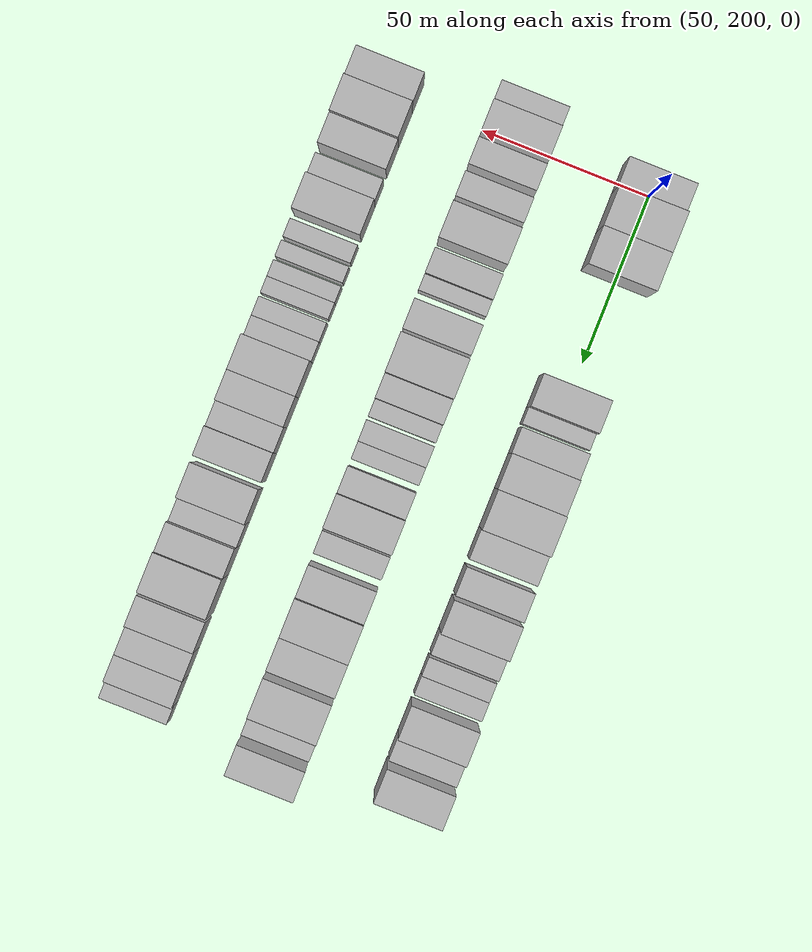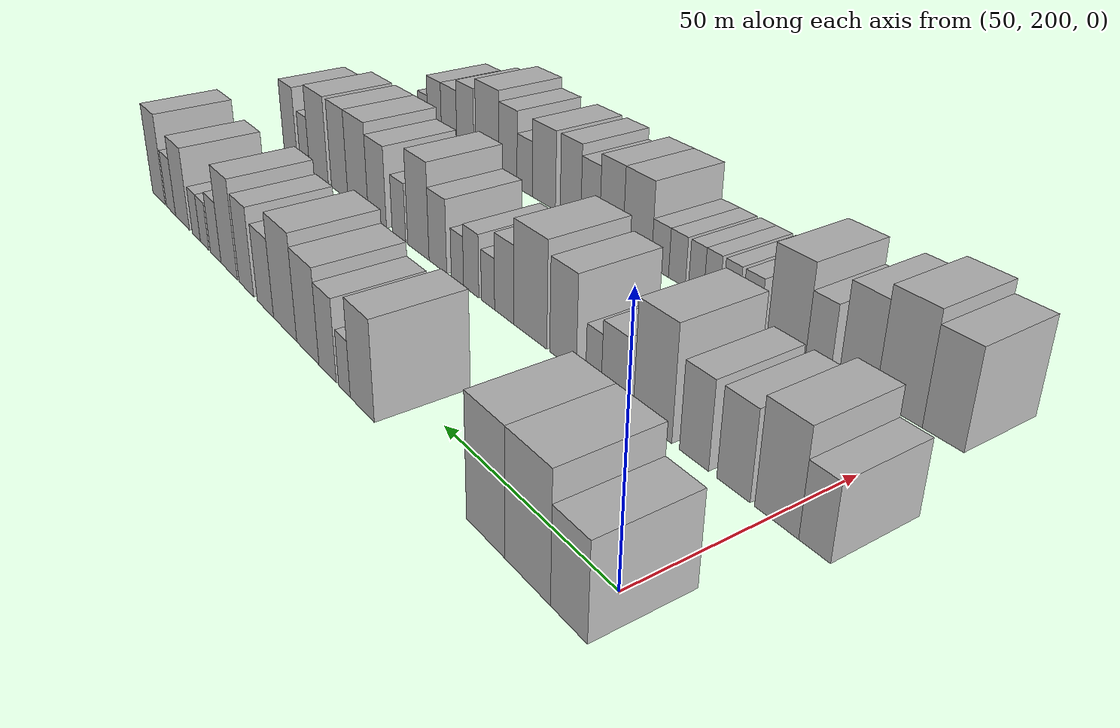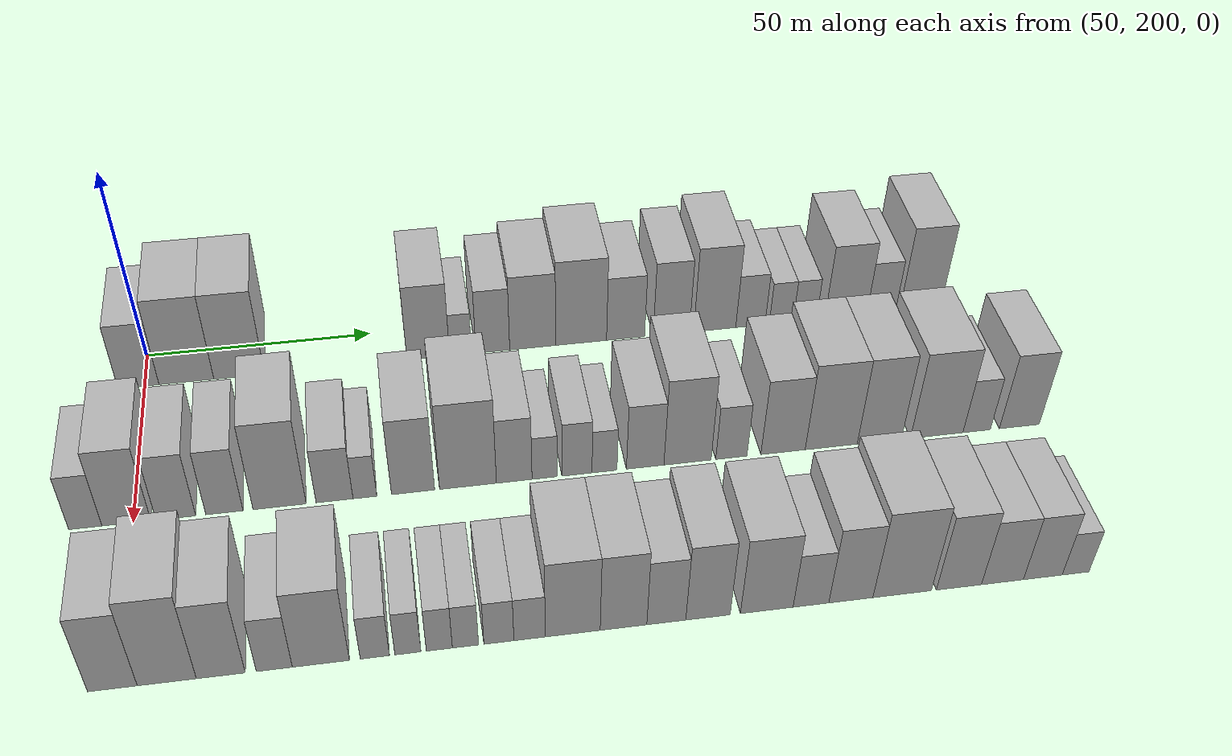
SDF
<sdf version="1.6">
 <world name="default">
  <model name="building_70">
   <static>1</static>
   <pose>50.0000 198.7415 0 0.000000 0.000000 0.000000</pose>
   <link name="link">
    <pose>0 0 9.00 0 0 0</pose>
    <collision name="collision"><geometry><box><size>20.0000 8.8567 18.0000</size></box></geometry></collision>
    <visual name="visual">
     <cast_shadows>0</cast_shadows>
     <geometry><box><size>20.0000 8.8567 18.0000</size></box></geometry>
     <material>
      <script>
       <uri>model://HANNAS_wall/materials/scripts</uri>
       <uri>model://HANNAS_wall/materials/textures</uri>
       <name>vrc/HANNAS_wall</name>
      </script>
     </material>
    </visual>
   </link>
  </model>
  <model name="building_71">
   <static>1</static>
   <pose>50.0000 209.1260 0 0.000000 0.000000 0.000000</pose>
   <link name="link">
    <pose>0 0 12.00 0 0 0</pose>
    <collision name="collision"><geometry><box><size>20.0000 11.9123 24.0000</size></box></geometry></collision>
    <visual name="visual">
     <cast_shadows>0</cast_shadows>
     <geometry><box><size>20.0000 11.9123 24.0000</size></box></geometry>
     <material>
      <script>
       <uri>model://HANNAS_wall/materials/scripts</uri>
       <uri>model://HANNAS_wall/materials/textures</uri>
       <name>vrc/HANNAS_wall</name>
      </script>
     </material>
    </visual>
   </link>
  </model>
  <model name="building_72">
   <static>1</static>
   <pose>50.0000 220.6536 0 0.000000 0.000000 0.000000</pose>
   <link name="link">
    <pose>0 0 12.00 0 0 0</pose>
    <collision name="collision"><geometry><box><size>20.0000 11.1428 24.0000</size></box></geometry></collision>
    <visual name="visual">
     <cast_shadows>0</cast_shadows>
     <geometry><box><size>20.0000 11.1428 24.0000</size></box></geometry>
     <material>
      <script>
       <uri>model://HANNAS_wall/materials/scripts</uri>
       <uri>model://HANNAS_wall/materials/textures</uri>
       <name>vrc/HANNAS_wall</name>
      </script>
     </material>
    </visual>
   </link>
  </model>
  <model name="building_73">
   <static>1</static>
   <pose>50.0000 262.5950 0 0.000000 0.000000 0.000000</pose>
   <link name="link">
    <pose>0 0 10.50 0 0 0</pose>
    <collision name="collision"><geometry><box><size>20.0000 9.5800 21.0000</size></box></geometry></collision>
    <visual name="visual">
     <cast_shadows>0</cast_shadows>
     <geometry><box><size>20.0000 9.5800 21.0000</size></box></geometry>
     <material>
      <script>
       <uri>model://HANNAS_wall/materials/scripts</uri>
       <uri>model://HANNAS_wall/materials/textures</uri>
       <name>vrc/HANNAS_wall</name>
      </script>
     </material>
    </visual>
   </link>
  </model>
  <model name="building_74">
   <static>1</static>
   <pose>50.0000 269.8548 0 0.000000 0.000000 0.000000</pose>
   <link name="link">
    <pose>0 0 6.00 0 0 0</pose>
    <collision name="collision"><geometry><box><size>20.0000 4.9397 12.0000</size></box></geometry></collision>
    <visual name="visual">
     <cast_shadows>0</cast_shadows>
     <geometry><box><size>20.0000 4.9397 12.0000</size></box></geometry>
     <material>
      <script>
       <uri>model://HANNAS_wall/materials/scripts</uri>
       <uri>model://HANNAS_wall/materials/textures</uri>
       <name>vrc/HANNAS_wall</name>
      </script>
     </material>
    </visual>
   </link>
  </model>
  <model name="building_75">
   <static>1</static>
   <pose>50.0000 277.1566 0 0.000000 0.000000 0.000000</pose>
   <link name="link">
    <pose>0 0 9.00 0 0 0</pose>
    <collision name="collision"><geometry><box><size>20.0000 7.6638 18.0000</size></box></geometry></collision>
    <visual name="visual">
     <cast_shadows>0</cast_shadows>
     <geometry><box><size>20.0000 7.6638 18.0000</size></box></geometry>
     <material>
      <script>
       <uri>model://HANNAS_wall/materials/scripts</uri>
       <uri>model://HANNAS_wall/materials/textures</uri>
       <name>vrc/HANNAS_wall</name>
      </script>
     </material>
    </visual>
   </link>
  </model>
  <model name="building_76">
   <static>1</static>
   <pose>50.0000 286.2230 0 0.000000 0.000000 0.000000</pose>
   <link name="link">
    <pose>0 0 10.50 0 0 0</pose>
    <collision name="collision"><geometry><box><size>20.0000 10.4691 21.0000</size></box></geometry></collision>
    <visual name="visual">
     <cast_shadows>0</cast_shadows>
     <geometry><box><size>20.0000 10.4691 21.0000</size></box></geometry>
     <material>
      <script>
       <uri>model://HANNAS_wall/materials/scripts</uri>
       <uri>model://HANNAS_wall/materials/textures</uri>
       <name>vrc/HANNAS_wall</name>
      </script>
     </material>
    </visual>
   </link>
  </model>
  <model name="building_77">
   <static>1</static>
   <pose>50.0000 297.3085 0 0.000000 0.000000 0.000000</pose>
   <link name="link">
    <pose>0 0 12.00 0 0 0</pose>
    <collision name="collision"><geometry><box><size>20.0000 11.7020 24.0000</size></box></geometry></collision>
    <visual name="visual">
     <cast_shadows>0</cast_shadows>
     <geometry><box><size>20.0000 11.7020 24.0000</size></box></geometry>
     <material>
      <script>
       <uri>model://HANNAS_wall/materials/scripts</uri>
       <uri>model://HANNAS_wall/materials/textures</uri>
       <name>vrc/HANNAS_wall</name>
      </script>
     </material>
    </visual>
   </link>
  </model>
  <model name="building_78">
   <static>1</static>
   <pose>50.0000 307.5567 0 0.000000 0.000000 0.000000</pose>
   <link name="link">
    <pose>0 0 9.00 0 0 0</pose>
    <collision name="collision"><geometry><box><size>20.0000 8.7943 18.0000</size></box></geometry></collision>
    <visual name="visual">
     <cast_shadows>0</cast_shadows>
     <geometry><box><size>20.0000 8.7943 18.0000</size></box></geometry>
     <material>
      <script>
       <uri>model://HANNAS_wall/materials/scripts</uri>
       <uri>model://HANNAS_wall/materials/textures</uri>
       <name>vrc/HANNAS_wall</name>
      </script>
     </material>
    </visual>
   </link>
  </model>
  <model name="building_79">
   <static>1</static>
   <pose>50.0000 318.1608 0 0.000000 0.000000 0.000000</pose>
   <link name="link">
    <pose>0 0 10.50 0 0 0</pose>
    <collision name="collision"><geometry><box><size>20.0000 8.4139 21.0000</size></box></geometry></collision>
    <visual name="visual">
     <cast_shadows>0</cast_shadows>
     <geometry><box><size>20.0000 8.4139 21.0000</size></box></geometry>
     <material>
      <script>
       <uri>model://HANNAS_wall/materials/scripts</uri>
       <uri>model://HANNAS_wall/materials/textures</uri>
       <name>vrc/HANNAS_wall</name>
      </script>
     </material>
    </visual>
   </link>
  </model>
  <model name="building_80">
   <static>1</static>
   <pose>50.0000 328.2949 0 0.000000 0.000000 0.000000</pose>
   <link name="link">
    <pose>0 0 12.00 0 0 0</pose>
    <collision name="collision"><geometry><box><size>20.0000 9.8542 24.0000</size></box></geometry></collision>
    <visual name="visual">
     <cast_shadows>0</cast_shadows>
     <geometry><box><size>20.0000 9.8542 24.0000</size></box></geometry>
     <material>
      <script>
       <uri>model://HANNAS_wall/materials/scripts</uri>
       <uri>model://HANNAS_wall/materials/textures</uri>
       <name>vrc/HANNAS_wall</name>
      </script>
     </material>
    </visual>
   </link>
  </model>
  <model name="building_81">
   <static>1</static>
   <pose>50.0000 336.6607 0 0.000000 0.000000 0.000000</pose>
   <link name="link">
    <pose>0 0 7.50 0 0 0</pose>
    <collision name="collision"><geometry><box><size>20.0000 6.8775 15.0000</size></box></geometry></collision>
    <visual name="visual">
     <cast_shadows>0</cast_shadows>
     <geometry><box><size>20.0000 6.8775 15.0000</size></box></geometry>
     <material>
      <script>
       <uri>model://HANNAS_wall/materials/scripts</uri>
       <uri>model://HANNAS_wall/materials/textures</uri>
       <name>vrc/HANNAS_wall</name>
      </script>
     </material>
    </visual>
   </link>
  </model>
  <model name="building_82">
   <static>1</static>
   <pose>50.0000 343.9257 0 0.000000 0.000000 0.000000</pose>
   <link name="link">
    <pose>0 0 6.00 0 0 0</pose>
    <collision name="collision"><geometry><box><size>20.0000 5.6524 12.0000</size></box></geometry></collision>
    <visual name="visual">
     <cast_shadows>0</cast_shadows>
     <geometry><box><size>20.0000 5.6524 12.0000</size></box></geometry>
     <material>
      <script>
       <uri>model://HANNAS_wall/materials/scripts</uri>
       <uri>model://HANNAS_wall/materials/textures</uri>
       <name>vrc/HANNAS_wall</name>
      </script>
     </material>
    </visual>
   </link>
  </model>
  <model name="building_83">
   <static>1</static>
   <pose>50.0000 349.5137 0 0.000000 0.000000 0.000000</pose>
   <link name="link">
    <pose>0 0 6.00 0 0 0</pose>
    <collision name="collision"><geometry><box><size>20.0000 5.5235 12.0000</size></box></geometry></collision>
    <visual name="visual">
     <cast_shadows>0</cast_shadows>
     <geometry><box><size>20.0000 5.5235 12.0000</size></box></geometry>
     <material>
      <script>
       <uri>model://HANNAS_wall/materials/scripts</uri>
       <uri>model://HANNAS_wall/materials/textures</uri>
       <name>vrc/HANNAS_wall</name>
      </script>
     </material>
    </visual>
   </link>
  </model>
  <model name="building_84">
   <static>1</static>
   <pose>50.0000 359.2712 0 0.000000 0.000000 0.000000</pose>
   <link name="link">
    <pose>0 0 10.50 0 0 0</pose>
    <collision name="collision"><geometry><box><size>20.0000 9.9916 21.0000</size></box></geometry></collision>
    <visual name="visual">
     <cast_shadows>0</cast_shadows>
     <geometry><box><size>20.0000 9.9916 21.0000</size></box></geometry>
     <material>
      <script>
       <uri>model://HANNAS_wall/materials/scripts</uri>
       <uri>model://HANNAS_wall/materials/textures</uri>
       <name>vrc/HANNAS_wall</name>
      </script>
     </material>
    </visual>
   </link>
  </model>
  <model name="building_85">
   <static>1</static>
   <pose>50.0000 367.7188 0 0.000000 0.000000 0.000000</pose>
   <link name="link">
    <pose>0 0 7.50 0 0 0</pose>
    <collision name="collision"><geometry><box><size>20.0000 6.9035 15.0000</size></box></geometry></collision>
    <visual name="visual">
     <cast_shadows>0</cast_shadows>
     <geometry><box><size>20.0000 6.9035 15.0000</size></box></geometry>
     <material>
      <script>
       <uri>model://HANNAS_wall/materials/scripts</uri>
       <uri>model://HANNAS_wall/materials/textures</uri>
       <name>vrc/HANNAS_wall</name>
      </script>
     </material>
    </visual>
   </link>
  </model>
  <model name="building_86">
   <static>1</static>
   <pose>50.0000 377.1174 0 0.000000 0.000000 0.000000</pose>
   <link name="link">
    <pose>0 0 12.00 0 0 0</pose>
    <collision name="collision"><geometry><box><size>20.0000 9.8938 24.0000</size></box></geometry></collision>
    <visual name="visual">
     <cast_shadows>0</cast_shadows>
     <geometry><box><size>20.0000 9.8938 24.0000</size></box></geometry>
     <material>
      <script>
       <uri>model://HANNAS_wall/materials/scripts</uri>
       <uri>model://HANNAS_wall/materials/textures</uri>
       <name>vrc/HANNAS_wall</name>
      </script>
     </material>
    </visual>
   </link>
  </model>
  <model name="building_145">
   <static>1</static>
   <pose>90.0000 190.6063 0 0.000000 0.000000 0.000000</pose>
   <link name="link">
    <pose>0 0 7.50 0 0 0</pose>
    <collision name="collision"><geometry><box><size>20.0000 6.5402 15.0000</size></box></geometry></collision>
    <visual name="visual">
     <cast_shadows>0</cast_shadows>
     <geometry><box><size>20.0000 6.5402 15.0000</size></box></geometry>
     <material>
      <script>
       <uri>model://HANNAS_wall/materials/scripts</uri>
       <uri>model://HANNAS_wall/materials/textures</uri>
       <name>vrc/HANNAS_wall</name>
      </script>
     </material>
    </visual>
   </link>
  </model>
  <model name="building_146">
   <static>1</static>
   <pose>90.0000 198.6851 0 0.000000 0.000000 0.000000</pose>
   <link name="link">
    <pose>0 0 10.50 0 0 0</pose>
    <collision name="collision"><geometry><box><size>20.0000 9.6175 21.0000</size></box></geometry></collision>
    <visual name="visual">
     <cast_shadows>0</cast_shadows>
     <geometry><box><size>20.0000 9.6175 21.0000</size></box></geometry>
     <material>
      <script>
       <uri>model://HANNAS_wall/materials/scripts</uri>
       <uri>model://HANNAS_wall/materials/textures</uri>
       <name>vrc/HANNAS_wall</name>
      </script>
     </material>
    </visual>
   </link>
  </model>
  <model name="building_147">
   <static>1</static>
   <pose>90.0000 208.4368 0 0.000000 0.000000 0.000000</pose>
   <link name="link">
    <pose>0 0 9.00 0 0 0</pose>
    <collision name="collision"><geometry><box><size>20.0000 7.8859 18.0000</size></box></geometry></collision>
    <visual name="visual">
     <cast_shadows>0</cast_shadows>
     <geometry><box><size>20.0000 7.8859 18.0000</size></box></geometry>
     <material>
      <script>
       <uri>model://HANNAS_wall/materials/scripts</uri>
       <uri>model://HANNAS_wall/materials/textures</uri>
       <name>vrc/HANNAS_wall</name>
      </script>
     </material>
    </visual>
   </link>
  </model>
  <model name="building_148">
   <static>1</static>
   <pose>90.0000 218.0921 0 0.000000 0.000000 0.000000</pose>
   <link name="link">
    <pose>0 0 9.00 0 0 0</pose>
    <collision name="collision"><geometry><box><size>20.0000 7.4246 18.0000</size></box></geometry></collision>
    <visual name="visual">
     <cast_shadows>0</cast_shadows>
     <geometry><box><size>20.0000 7.4246 18.0000</size></box></geometry>
     <material>
      <script>
       <uri>model://HANNAS_wall/materials/scripts</uri>
       <uri>model://HANNAS_wall/materials/textures</uri>
       <name>vrc/HANNAS_wall</name>
      </script>
     </material>
    </visual>
   </link>
  </model>
  <model name="building_149">
   <static>1</static>
   <pose>90.0000 229.1550 0 0.000000 0.000000 0.000000</pose>
   <link name="link">
    <pose>0 0 12.00 0 0 0</pose>
    <collision name="collision"><geometry><box><size>20.0000 10.7013 24.0000</size></box></geometry></collision>
    <visual name="visual">
     <cast_shadows>0</cast_shadows>
     <geometry><box><size>20.0000 10.7013 24.0000</size></box></geometry>
     <material>
      <script>
       <uri>model://HANNAS_wall/materials/scripts</uri>
       <uri>model://HANNAS_wall/materials/textures</uri>
       <name>vrc/HANNAS_wall</name>
      </script>
     </material>
    </visual>
   </link>
  </model>
  <model name="building_150">
   <static>1</static>
   <pose>90.0000 240.2508 0 0.000000 0.000000 0.000000</pose>
   <link name="link">
    <pose>0 0 7.50 0 0 0</pose>
    <collision name="collision"><geometry><box><size>20.0000 7.4903 15.0000</size></box></geometry></collision>
    <visual name="visual">
     <cast_shadows>0</cast_shadows>
     <geometry><box><size>20.0000 7.4903 15.0000</size></box></geometry>
     <material>
      <script>
       <uri>model://HANNAS_wall/materials/scripts</uri>
       <uri>model://HANNAS_wall/materials/textures</uri>
       <name>vrc/HANNAS_wall</name>
      </script>
     </material>
    </visual>
   </link>
  </model>
  <model name="building_151">
   <static>1</static>
   <pose>90.0000 246.4155 0 0.000000 0.000000 0.000000</pose>
   <link name="link">
    <pose>0 0 6.00 0 0 0</pose>
    <collision name="collision"><geometry><box><size>20.0000 4.8391 12.0000</size></box></geometry></collision>
    <visual name="visual">
     <cast_shadows>0</cast_shadows>
     <geometry><box><size>20.0000 4.8391 12.0000</size></box></geometry>
     <material>
      <script>
       <uri>model://HANNAS_wall/materials/scripts</uri>
       <uri>model://HANNAS_wall/materials/textures</uri>
       <name>vrc/HANNAS_wall</name>
      </script>
     </material>
    </visual>
   </link>
  </model>
  <model name="building_152">
   <static>1</static>
   <pose>90.0000 256.2594 0 0.000000 0.000000 0.000000</pose>
   <link name="link">
    <pose>0 0 10.50 0 0 0</pose>
    <collision name="collision"><geometry><box><size>20.0000 8.8486 21.0000</size></box></geometry></collision>
    <visual name="visual">
     <cast_shadows>0</cast_shadows>
     <geometry><box><size>20.0000 8.8486 21.0000</size></box></geometry>
     <material>
      <script>
       <uri>model://HANNAS_wall/materials/scripts</uri>
       <uri>model://HANNAS_wall/materials/textures</uri>
       <name>vrc/HANNAS_wall</name>
      </script>
     </material>
    </visual>
   </link>
  </model>
  <model name="building_153">
   <static>1</static>
   <pose>90.0000 267.5605 0 0.000000 0.000000 0.000000</pose>
   <link name="link">
    <pose>0 0 12.00 0 0 0</pose>
    <collision name="collision"><geometry><box><size>20.0000 11.7536 24.0000</size></box></geometry></collision>
    <visual name="visual">
     <cast_shadows>0</cast_shadows>
     <geometry><box><size>20.0000 11.7536 24.0000</size></box></geometry>
     <material>
      <script>
       <uri>model://HANNAS_wall/materials/scripts</uri>
       <uri>model://HANNAS_wall/materials/textures</uri>
       <name>vrc/HANNAS_wall</name>
      </script>
     </material>
    </visual>
   </link>
  </model>
  <model name="building_154">
   <static>1</static>
   <pose>90.0000 277.1360 0 0.000000 0.000000 0.000000</pose>
   <link name="link">
    <pose>0 0 9.00 0 0 0</pose>
    <collision name="collision"><geometry><box><size>20.0000 7.3975 18.0000</size></box></geometry></collision>
    <visual name="visual">
     <cast_shadows>0</cast_shadows>
     <geometry><box><size>20.0000 7.3975 18.0000</size></box></geometry>
     <material>
      <script>
       <uri>model://HANNAS_wall/materials/scripts</uri>
       <uri>model://HANNAS_wall/materials/textures</uri>
       <name>vrc/HANNAS_wall</name>
      </script>
     </material>
    </visual>
   </link>
  </model>
  <model name="building_155">
   <static>1</static>
   <pose>90.0000 283.4582 0 0.000000 0.000000 0.000000</pose>
   <link name="link">
    <pose>0 0 6.00 0 0 0</pose>
    <collision name="collision"><geometry><box><size>20.0000 5.2469 12.0000</size></box></geometry></collision>
    <visual name="visual">
     <cast_shadows>0</cast_shadows>
     <geometry><box><size>20.0000 5.2469 12.0000</size></box></geometry>
     <material>
      <script>
       <uri>model://HANNAS_wall/materials/scripts</uri>
       <uri>model://HANNAS_wall/materials/textures</uri>
       <name>vrc/HANNAS_wall</name>
      </script>
     </material>
    </visual>
   </link>
  </model>
  <model name="building_156">
   <static>1</static>
   <pose>90.0000 290.2266 0 0.000000 0.000000 0.000000</pose>
   <link name="link">
    <pose>0 0 7.50 0 0 0</pose>
    <collision name="collision"><geometry><box><size>20.0000 6.2899 15.0000</size></box></geometry></collision>
    <visual name="visual">
     <cast_shadows>0</cast_shadows>
     <geometry><box><size>20.0000 6.2899 15.0000</size></box></geometry>
     <material>
      <script>
       <uri>model://HANNAS_wall/materials/scripts</uri>
       <uri>model://HANNAS_wall/materials/textures</uri>
       <name>vrc/HANNAS_wall</name>
      </script>
     </material>
    </visual>
   </link>
  </model>
  <model name="building_157">
   <static>1</static>
   <pose>90.0000 296.0034 0 0.000000 0.000000 0.000000</pose>
   <link name="link">
    <pose>0 0 6.00 0 0 0</pose>
    <collision name="collision"><geometry><box><size>20.0000 5.2637 12.0000</size></box></geometry></collision>
    <visual name="visual">
     <cast_shadows>0</cast_shadows>
     <geometry><box><size>20.0000 5.2637 12.0000</size></box></geometry>
     <material>
      <script>
       <uri>model://HANNAS_wall/materials/scripts</uri>
       <uri>model://HANNAS_wall/materials/textures</uri>
       <name>vrc/HANNAS_wall</name>
      </script>
     </material>
    </visual>
   </link>
  </model>
  <model name="building_158">
   <static>1</static>
   <pose>90.0000 304.6035 0 0.000000 0.000000 0.000000</pose>
   <link name="link">
    <pose>0 0 9.00 0 0 0</pose>
    <collision name="collision"><geometry><box><size>20.0000 7.9364 18.0000</size></box></geometry></collision>
    <visual name="visual">
     <cast_shadows>0</cast_shadows>
     <geometry><box><size>20.0000 7.9364 18.0000</size></box></geometry>
     <material>
      <script>
       <uri>model://HANNAS_wall/materials/scripts</uri>
       <uri>model://HANNAS_wall/materials/textures</uri>
       <name>vrc/HANNAS_wall</name>
      </script>
     </material>
    </visual>
   </link>
  </model>
  <model name="building_159">
   <static>1</static>
   <pose>90.0000 313.5984 0 0.000000 0.000000 0.000000</pose>
   <link name="link">
    <pose>0 0 12.00 0 0 0</pose>
    <collision name="collision"><geometry><box><size>20.0000 10.0534 24.0000</size></box></geometry></collision>
    <visual name="visual">
     <cast_shadows>0</cast_shadows>
     <geometry><box><size>20.0000 10.0534 24.0000</size></box></geometry>
     <material>
      <script>
       <uri>model://HANNAS_wall/materials/scripts</uri>
       <uri>model://HANNAS_wall/materials/textures</uri>
       <name>vrc/HANNAS_wall</name>
      </script>
     </material>
    </visual>
   </link>
  </model>
  <model name="building_160">
   <static>1</static>
   <pose>90.0000 322.9660 0 0.000000 0.000000 0.000000</pose>
   <link name="link">
    <pose>0 0 7.50 0 0 0</pose>
    <collision name="collision"><geometry><box><size>20.0000 6.6816 15.0000</size></box></geometry></collision>
    <visual name="visual">
     <cast_shadows>0</cast_shadows>
     <geometry><box><size>20.0000 6.6816 15.0000</size></box></geometry>
     <material>
      <script>
       <uri>model://HANNAS_wall/materials/scripts</uri>
       <uri>model://HANNAS_wall/materials/textures</uri>
       <name>vrc/HANNAS_wall</name>
      </script>
     </material>
    </visual>
   </link>
  </model>
  <model name="building_161">
   <static>1</static>
   <pose>90.0000 334.1045 0 0.000000 0.000000 0.000000</pose>
   <link name="link">
    <pose>0 0 10.50 0 0 0</pose>
    <collision name="collision"><geometry><box><size>20.0000 9.5955 21.0000</size></box></geometry></collision>
    <visual name="visual">
     <cast_shadows>0</cast_shadows>
     <geometry><box><size>20.0000 9.5955 21.0000</size></box></geometry>
     <material>
      <script>
       <uri>model://HANNAS_wall/materials/scripts</uri>
       <uri>model://HANNAS_wall/materials/textures</uri>
       <name>vrc/HANNAS_wall</name>
      </script>
     </material>
    </visual>
   </link>
  </model>
  <model name="building_162">
   <static>1</static>
   <pose>90.0000 344.5628 0 0.000000 0.000000 0.000000</pose>
   <link name="link">
    <pose>0 0 12.00 0 0 0</pose>
    <collision name="collision"><geometry><box><size>20.0000 11.3211 24.0000</size></box></geometry></collision>
    <visual name="visual">
     <cast_shadows>0</cast_shadows>
     <geometry><box><size>20.0000 11.3211 24.0000</size></box></geometry>
     <material>
      <script>
       <uri>model://HANNAS_wall/materials/scripts</uri>
       <uri>model://HANNAS_wall/materials/textures</uri>
       <name>vrc/HANNAS_wall</name>
      </script>
     </material>
    </visual>
   </link>
  </model>
  <model name="building_163">
   <static>1</static>
   <pose>90.0000 355.0587 0 0.000000 0.000000 0.000000</pose>
   <link name="link">
    <pose>0 0 12.00 0 0 0</pose>
    <collision name="collision"><geometry><box><size>20.0000 9.6706 24.0000</size></box></geometry></collision>
    <visual name="visual">
     <cast_shadows>0</cast_shadows>
     <geometry><box><size>20.0000 9.6706 24.0000</size></box></geometry>
     <material>
      <script>
       <uri>model://HANNAS_wall/materials/scripts</uri>
       <uri>model://HANNAS_wall/materials/textures</uri>
       <name>vrc/HANNAS_wall</name>
      </script>
     </material>
    </visual>
   </link>
  </model>
  <model name="building_164">
   <static>1</static>
   <pose>90.0000 367.6995 0 0.000000 0.000000 0.000000</pose>
   <link name="link">
    <pose>0 0 12.00 0 0 0</pose>
    <collision name="collision"><geometry><box><size>20.0000 11.6108 24.0000</size></box></geometry></collision>
    <visual name="visual">
     <cast_shadows>0</cast_shadows>
     <geometry><box><size>20.0000 11.6108 24.0000</size></box></geometry>
     <material>
      <script>
       <uri>model://HANNAS_wall/materials/scripts</uri>
       <uri>model://HANNAS_wall/materials/textures</uri>
       <name>vrc/HANNAS_wall</name>
      </script>
     </material>
    </visual>
   </link>
  </model>
  <model name="building_165">
   <static>1</static>
   <pose>90.0000 376.5494 0 0.000000 0.000000 0.000000</pose>
   <link name="link">
    <pose>0 0 7.50 0 0 0</pose>
    <collision name="collision"><geometry><box><size>20.0000 6.0891 15.0000</size></box></geometry></collision>
    <visual name="visual">
     <cast_shadows>0</cast_shadows>
     <geometry><box><size>20.0000 6.0891 15.0000</size></box></geometry>
     <material>
      <script>
       <uri>model://HANNAS_wall/materials/scripts</uri>
       <uri>model://HANNAS_wall/materials/textures</uri>
       <name>vrc/HANNAS_wall</name>
      </script>
     </material>
    </visual>
   </link>
  </model>
  <model name="building_166">
   <static>1</static>
   <pose>90.0000 386.0542 0 0.000000 0.000000 0.000000</pose>
   <link name="link">
    <pose>0 0 10.50 0 0 0</pose>
    <collision name="collision"><geometry><box><size>20.0000 8.9206 21.0000</size></box></geometry></collision>
    <visual name="visual">
     <cast_shadows>0</cast_shadows>
     <geometry><box><size>20.0000 8.9206 21.0000</size></box></geometry>
     <material>
      <script>
       <uri>model://HANNAS_wall/materials/scripts</uri>
       <uri>model://HANNAS_wall/materials/textures</uri>
       <name>vrc/HANNAS_wall</name>
      </script>
     </material>
    </visual>
   </link>
  </model>
  <model name="building_226">
   <static>1</static>
   <pose>130.0000 198.7001 0 0.000000 0.000000 0.000000</pose>
   <link name="link">
    <pose>0 0 10.50 0 0 0</pose>
    <collision name="collision"><geometry><box><size>20.0000 8.8362 21.0000</size></box></geometry></collision>
    <visual name="visual">
     <cast_shadows>0</cast_shadows>
     <geometry><box><size>20.0000 8.8362 21.0000</size></box></geometry>
     <material>
      <script>
       <uri>model://HANNAS_wall/materials/scripts</uri>
       <uri>model://HANNAS_wall/materials/textures</uri>
       <name>vrc/HANNAS_wall</name>
      </script>
     </material>
    </visual>
   </link>
  </model>
  <model name="building_227">
   <static>1</static>
   <pose>130.0000 208.4206 0 0.000000 0.000000 0.000000</pose>
   <link name="link">
    <pose>0 0 12.00 0 0 0</pose>
    <collision name="collision"><geometry><box><size>20.0000 10.6049 24.0000</size></box></geometry></collision>
    <visual name="visual">
     <cast_shadows>0</cast_shadows>
     <geometry><box><size>20.0000 10.6049 24.0000</size></box></geometry>
     <material>
      <script>
       <uri>model://HANNAS_wall/materials/scripts</uri>
       <uri>model://HANNAS_wall/materials/textures</uri>
       <name>vrc/HANNAS_wall</name>
      </script>
     </material>
    </visual>
   </link>
  </model>
  <model name="building_228">
   <static>1</static>
   <pose>130.0000 218.1414 0 0.000000 0.000000 0.000000</pose>
   <link name="link">
    <pose>0 0 10.50 0 0 0</pose>
    <collision name="collision"><geometry><box><size>20.0000 8.8367 21.0000</size></box></geometry></collision>
    <visual name="visual">
     <cast_shadows>0</cast_shadows>
     <geometry><box><size>20.0000 8.8367 21.0000</size></box></geometry>
     <material>
      <script>
       <uri>model://HANNAS_wall/materials/scripts</uri>
       <uri>model://HANNAS_wall/materials/textures</uri>
       <name>vrc/HANNAS_wall</name>
      </script>
     </material>
    </visual>
   </link>
  </model>
  <model name="building_229">
   <static>1</static>
   <pose>130.0000 227.8342 0 0.000000 0.000000 0.000000</pose>
   <link name="link">
    <pose>0 0 7.50 0 0 0</pose>
    <collision name="collision"><geometry><box><size>20.0000 6.5488 15.0000</size></box></geometry></collision>
    <visual name="visual">
     <cast_shadows>0</cast_shadows>
     <geometry><box><size>20.0000 6.5488 15.0000</size></box></geometry>
     <material>
      <script>
       <uri>model://HANNAS_wall/materials/scripts</uri>
       <uri>model://HANNAS_wall/materials/textures</uri>
       <name>vrc/HANNAS_wall</name>
      </script>
     </material>
    </visual>
   </link>
  </model>
  <model name="building_230">
   <static>1</static>
   <pose>130.0000 236.3385 0 0.000000 0.000000 0.000000</pose>
   <link name="link">
    <pose>0 0 10.50 0 0 0</pose>
    <collision name="collision"><geometry><box><size>20.0000 10.4600 21.0000</size></box></geometry></collision>
    <visual name="visual">
     <cast_shadows>0</cast_shadows>
     <geometry><box><size>20.0000 10.4600 21.0000</size></box></geometry>
     <material>
      <script>
       <uri>model://HANNAS_wall/materials/scripts</uri>
       <uri>model://HANNAS_wall/materials/textures</uri>
       <name>vrc/HANNAS_wall</name>
      </script>
     </material>
    </visual>
   </link>
  </model>
  <model name="building_231">
   <static>1</static>
   <pose>130.0000 246.2659 0 0.000000 0.000000 0.000000</pose>
   <link name="link">
    <pose>0 0 6.00 0 0 0</pose>
    <collision name="collision"><geometry><box><size>20.0000 5.3947 12.0000</size></box></geometry></collision>
    <visual name="visual">
     <cast_shadows>0</cast_shadows>
     <geometry><box><size>20.0000 5.3947 12.0000</size></box></geometry>
     <material>
      <script>
       <uri>model://HANNAS_wall/materials/scripts</uri>
       <uri>model://HANNAS_wall/materials/textures</uri>
       <name>vrc/HANNAS_wall</name>
      </script>
     </material>
    </visual>
   </link>
  </model>
  <model name="building_232">
   <static>1</static>
   <pose>130.0000 252.3782 0 0.000000 0.000000 0.000000</pose>
   <link name="link">
    <pose>0 0 6.00 0 0 0</pose>
    <collision name="collision"><geometry><box><size>20.0000 4.8300 12.0000</size></box></geometry></collision>
    <visual name="visual">
     <cast_shadows>0</cast_shadows>
     <geometry><box><size>20.0000 4.8300 12.0000</size></box></geometry>
     <material>
      <script>
       <uri>model://HANNAS_wall/materials/scripts</uri>
       <uri>model://HANNAS_wall/materials/textures</uri>
       <name>vrc/HANNAS_wall</name>
      </script>
     </material>
    </visual>
   </link>
  </model>
  <model name="building_233">
   <static>1</static>
   <pose>130.0000 258.2226 0 0.000000 0.000000 0.000000</pose>
   <link name="link">
    <pose>0 0 6.00 0 0 0</pose>
    <collision name="collision"><geometry><box><size>20.0000 4.8588 12.0000</size></box></geometry></collision>
    <visual name="visual">
     <cast_shadows>0</cast_shadows>
     <geometry><box><size>20.0000 4.8588 12.0000</size></box></geometry>
     <material>
      <script>
       <uri>model://HANNAS_wall/materials/scripts</uri>
       <uri>model://HANNAS_wall/materials/textures</uri>
       <name>vrc/HANNAS_wall</name>
      </script>
     </material>
    </visual>
   </link>
  </model>
  <model name="building_234">
   <static>1</static>
   <pose>130.0000 263.0963 0 0.000000 0.000000 0.000000</pose>
   <link name="link">
    <pose>0 0 6.00 0 0 0</pose>
    <collision name="collision"><geometry><box><size>20.0000 4.8885 12.0000</size></box></geometry></collision>
    <visual name="visual">
     <cast_shadows>0</cast_shadows>
     <geometry><box><size>20.0000 4.8885 12.0000</size></box></geometry>
     <material>
      <script>
       <uri>model://HANNAS_wall/materials/scripts</uri>
       <uri>model://HANNAS_wall/materials/textures</uri>
       <name>vrc/HANNAS_wall</name>
      </script>
     </material>
    </visual>
   </link>
  </model>
  <model name="building_235">
   <static>1</static>
   <pose>130.0000 269.3535 0 0.000000 0.000000 0.000000</pose>
   <link name="link">
    <pose>0 0 6.00 0 0 0</pose>
    <collision name="collision"><geometry><box><size>20.0000 5.6260 12.0000</size></box></geometry></collision>
    <visual name="visual">
     <cast_shadows>0</cast_shadows>
     <geometry><box><size>20.0000 5.6260 12.0000</size></box></geometry>
     <material>
      <script>
       <uri>model://HANNAS_wall/materials/scripts</uri>
       <uri>model://HANNAS_wall/materials/textures</uri>
       <name>vrc/HANNAS_wall</name>
      </script>
     </material>
    </visual>
   </link>
  </model>
  <model name="building_236">
   <static>1</static>
   <pose>130.0000 275.1358 0 0.000000 0.000000 0.000000</pose>
   <link name="link">
    <pose>0 0 6.00 0 0 0</pose>
    <collision name="collision"><geometry><box><size>20.0000 5.9385 12.0000</size></box></geometry></collision>
    <visual name="visual">
     <cast_shadows>0</cast_shadows>
     <geometry><box><size>20.0000 5.9385 12.0000</size></box></geometry>
     <material>
      <script>
       <uri>model://HANNAS_wall/materials/scripts</uri>
       <uri>model://HANNAS_wall/materials/textures</uri>
       <name>vrc/HANNAS_wall</name>
      </script>
     </material>
    </visual>
   </link>
  </model>
  <model name="building_237">
   <static>1</static>
   <pose>130.0000 283.3078 0 0.000000 0.000000 0.000000</pose>
   <link name="link">
    <pose>0 0 10.50 0 0 0</pose>
    <collision name="collision"><geometry><box><size>20.0000 10.4054 21.0000</size></box></geometry></collision>
    <visual name="visual">
     <cast_shadows>0</cast_shadows>
     <geometry><box><size>20.0000 10.4054 21.0000</size></box></geometry>
     <material>
      <script>
       <uri>model://HANNAS_wall/materials/scripts</uri>
       <uri>model://HANNAS_wall/materials/textures</uri>
       <name>vrc/HANNAS_wall</name>
      </script>
     </material>
    </visual>
   </link>
  </model>
  <model name="building_238">
   <static>1</static>
   <pose>130.0000 292.9680 0 0.000000 0.000000 0.000000</pose>
   <link name="link">
    <pose>0 0 10.50 0 0 0</pose>
    <collision name="collision"><geometry><box><size>20.0000 8.9151 21.0000</size></box></geometry></collision>
    <visual name="visual">
     <cast_shadows>0</cast_shadows>
     <geometry><box><size>20.0000 8.9151 21.0000</size></box></geometry>
     <material>
      <script>
       <uri>model://HANNAS_wall/materials/scripts</uri>
       <uri>model://HANNAS_wall/materials/textures</uri>
       <name>vrc/HANNAS_wall</name>
      </script>
     </material>
    </visual>
   </link>
  </model>
  <model name="building_239">
   <static>1</static>
   <pose>130.0000 301.1719 0 0.000000 0.000000 0.000000</pose>
   <link name="link">
    <pose>0 0 9.00 0 0 0</pose>
    <collision name="collision"><geometry><box><size>20.0000 7.4928 18.0000</size></box></geometry></collision>
    <visual name="visual">
     <cast_shadows>0</cast_shadows>
     <geometry><box><size>20.0000 7.4928 18.0000</size></box></geometry>
     <material>
      <script>
       <uri>model://HANNAS_wall/materials/scripts</uri>
       <uri>model://HANNAS_wall/materials/textures</uri>
       <name>vrc/HANNAS_wall</name>
      </script>
     </material>
    </visual>
   </link>
  </model>
  <model name="building_240">
   <static>1</static>
   <pose>130.0000 309.2123 0 0.000000 0.000000 0.000000</pose>
   <link name="link">
    <pose>0 0 10.50 0 0 0</pose>
    <collision name="collision"><geometry><box><size>20.0000 8.5879 21.0000</size></box></geometry></collision>
    <visual name="visual">
     <cast_shadows>0</cast_shadows>
     <geometry><box><size>20.0000 8.5879 21.0000</size></box></geometry>
     <material>
      <script>
       <uri>model://HANNAS_wall/materials/scripts</uri>
       <uri>model://HANNAS_wall/materials/textures</uri>
       <name>vrc/HANNAS_wall</name>
      </script>
     </material>
    </visual>
   </link>
  </model>
  <model name="building_241">
   <static>1</static>
   <pose>130.0000 320.6453 0 0.000000 0.000000 0.000000</pose>
   <link name="link">
    <pose>0 0 10.50 0 0 0</pose>
    <collision name="collision"><geometry><box><size>20.0000 10.2782 21.0000</size></box></geometry></collision>
    <visual name="visual">
     <cast_shadows>0</cast_shadows>
     <geometry><box><size>20.0000 10.2782 21.0000</size></box></geometry>
     <material>
      <script>
       <uri>model://HANNAS_wall/materials/scripts</uri>
       <uri>model://HANNAS_wall/materials/textures</uri>
       <name>vrc/HANNAS_wall</name>
      </script>
     </material>
    </visual>
   </link>
  </model>
  <model name="building_242">
   <static>1</static>
   <pose>130.0000 329.2930 0 0.000000 0.000000 0.000000</pose>
   <link name="link">
    <pose>0 0 7.50 0 0 0</pose>
    <collision name="collision"><geometry><box><size>20.0000 7.0172 15.0000</size></box></geometry></collision>
    <visual name="visual">
     <cast_shadows>0</cast_shadows>
     <geometry><box><size>20.0000 7.0172 15.0000</size></box></geometry>
     <material>
      <script>
       <uri>model://HANNAS_wall/materials/scripts</uri>
       <uri>model://HANNAS_wall/materials/textures</uri>
       <name>vrc/HANNAS_wall</name>
      </script>
     </material>
    </visual>
   </link>
  </model>
  <model name="building_243">
   <static>1</static>
   <pose>130.0000 337.1601 0 0.000000 0.000000 0.000000</pose>
   <link name="link">
    <pose>0 0 10.50 0 0 0</pose>
    <collision name="collision"><geometry><box><size>20.0000 8.7170 21.0000</size></box></geometry></collision>
    <visual name="visual">
     <cast_shadows>0</cast_shadows>
     <geometry><box><size>20.0000 8.7170 21.0000</size></box></geometry>
     <material>
      <script>
       <uri>model://HANNAS_wall/materials/scripts</uri>
       <uri>model://HANNAS_wall/materials/textures</uri>
       <name>vrc/HANNAS_wall</name>
      </script>
     </material>
    </visual>
   </link>
  </model>
  <model name="building_244">
   <static>1</static>
   <pose>130.0000 347.3378 0 0.000000 0.000000 0.000000</pose>
   <link name="link">
    <pose>0 0 12.00 0 0 0</pose>
    <collision name="collision"><geometry><box><size>20.0000 11.6384 24.0000</size></box></geometry></collision>
    <visual name="visual">
     <cast_shadows>0</cast_shadows>
     <geometry><box><size>20.0000 11.6384 24.0000</size></box></geometry>
     <material>
      <script>
       <uri>model://HANNAS_wall/materials/scripts</uri>
       <uri>model://HANNAS_wall/materials/textures</uri>
       <name>vrc/HANNAS_wall</name>
      </script>
     </material>
    </visual>
   </link>
  </model>
  <model name="building_245">
   <static>1</static>
   <pose>130.0000 358.6849 0 0.000000 0.000000 0.000000</pose>
   <link name="link">
    <pose>0 0 10.50 0 0 0</pose>
    <collision name="collision"><geometry><box><size>20.0000 9.0558 21.0000</size></box></geometry></collision>
    <visual name="visual">
     <cast_shadows>0</cast_shadows>
     <geometry><box><size>20.0000 9.0558 21.0000</size></box></geometry>
     <material>
      <script>
       <uri>model://HANNAS_wall/materials/scripts</uri>
       <uri>model://HANNAS_wall/materials/textures</uri>
       <name>vrc/HANNAS_wall</name>
      </script>
     </material>
    </visual>
   </link>
  </model>
  <model name="building_246">
   <static>1</static>
   <pose>130.0000 367.4501 0 0.000000 0.000000 0.000000</pose>
   <link name="link">
    <pose>0 0 9.00 0 0 0</pose>
    <collision name="collision"><geometry><box><size>20.0000 8.4745 18.0000</size></box></geometry></collision>
    <visual name="visual">
     <cast_shadows>0</cast_shadows>
     <geometry><box><size>20.0000 8.4745 18.0000</size></box></geometry>
     <material>
      <script>
       <uri>model://HANNAS_wall/materials/scripts</uri>
       <uri>model://HANNAS_wall/materials/textures</uri>
       <name>vrc/HANNAS_wall</name>
      </script>
     </material>
    </visual>
   </link>
  </model>
  <model name="building_247">
   <static>1</static>
   <pose>130.0000 375.6300 0 0.000000 0.000000 0.000000</pose>
   <link name="link">
    <pose>0 0 9.00 0 0 0</pose>
    <collision name="collision"><geometry><box><size>20.0000 7.8854 18.0000</size></box></geometry></collision>
    <visual name="visual">
     <cast_shadows>0</cast_shadows>
     <geometry><box><size>20.0000 7.8854 18.0000</size></box></geometry>
     <material>
      <script>
       <uri>model://HANNAS_wall/materials/scripts</uri>
       <uri>model://HANNAS_wall/materials/textures</uri>
       <name>vrc/HANNAS_wall</name>
      </script>
     </material>
    </visual>
   </link>
  </model>
  <model name="building_248">
   <static>1</static>
   <pose>130.0000 382.3108 0 0.000000 0.000000 0.000000</pose>
   <link name="link">
    <pose>0 0 6.00 0 0 0</pose>
    <collision name="collision"><geometry><box><size>20.0000 5.4762 12.0000</size></box></geometry></collision>
    <visual name="visual">
     <cast_shadows>0</cast_shadows>
     <geometry><box><size>20.0000 5.4762 12.0000</size></box></geometry>
     <material>
      <script>
       <uri>model://HANNAS_wall/materials/scripts</uri>
       <uri>model://HANNAS_wall/materials/textures</uri>
       <name>vrc/HANNAS_wall</name>
      </script>
     </material>
    </visual>
   </link>
  </model>
 </world>
</sdf>
